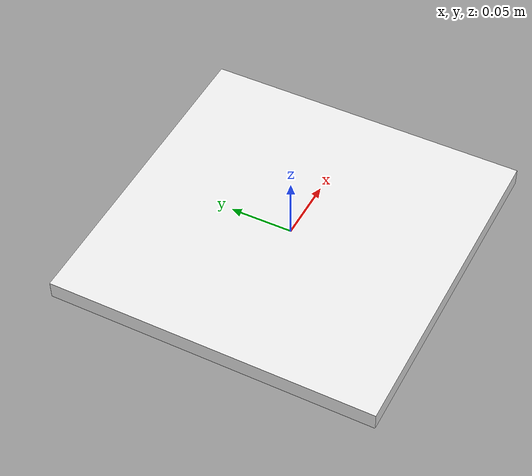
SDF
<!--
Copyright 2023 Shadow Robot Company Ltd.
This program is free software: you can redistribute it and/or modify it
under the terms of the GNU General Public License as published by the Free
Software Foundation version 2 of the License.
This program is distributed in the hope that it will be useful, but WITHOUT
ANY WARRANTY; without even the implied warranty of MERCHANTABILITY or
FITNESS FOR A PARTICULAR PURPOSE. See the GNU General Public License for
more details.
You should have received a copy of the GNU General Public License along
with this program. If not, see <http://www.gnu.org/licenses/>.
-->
<?xml version='1.0'?>

<sdf version="1.4">
<model name="base_plate">
    <static>true</static>
    <link name="link">
      <collision name="collision_base_plate">
        <geometry>
          <box>
            <size>0.26 0.26 0.014</size>
          </box>
        </geometry>
      </collision>
      <visual name="visual_base_plate">
        <geometry>
          <box>
            <size>0.26 0.26 0.014</size>
          </box>
        </geometry>
        <material>
          <script>
            <uri>file://media/materials/scripts/gazebo.material</uri>
            <name>Gazebo/White</name>
          </script>
        </material>
      </visual>
    </link>
  </model>
</sdf>
